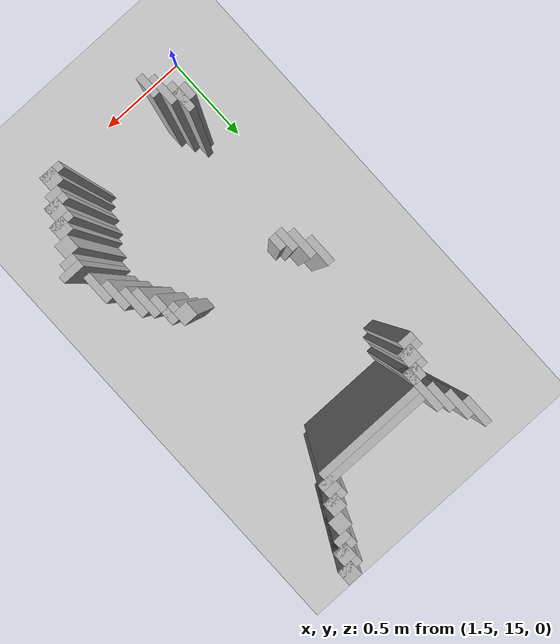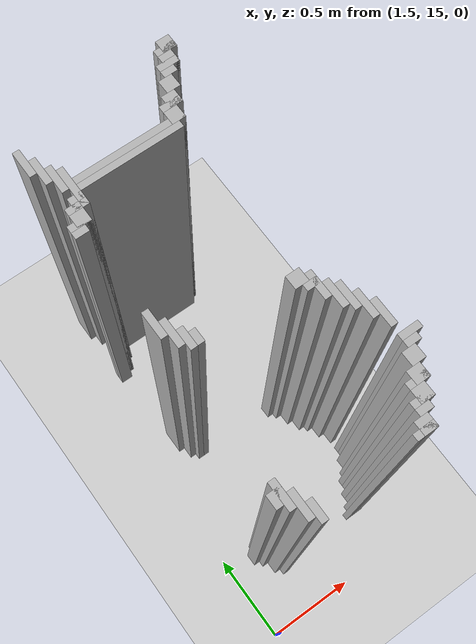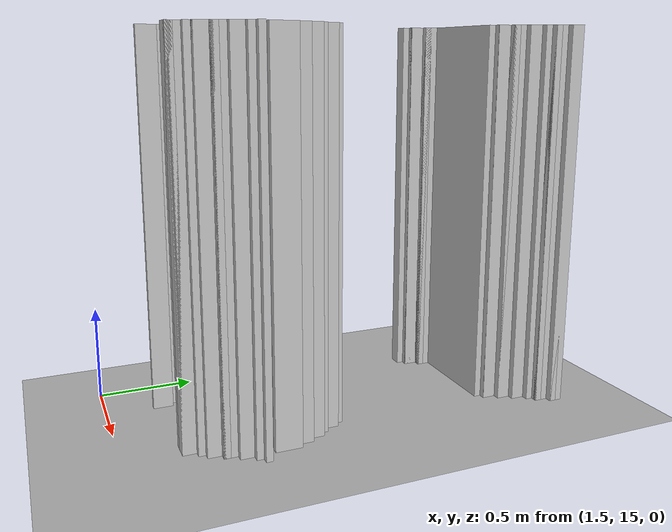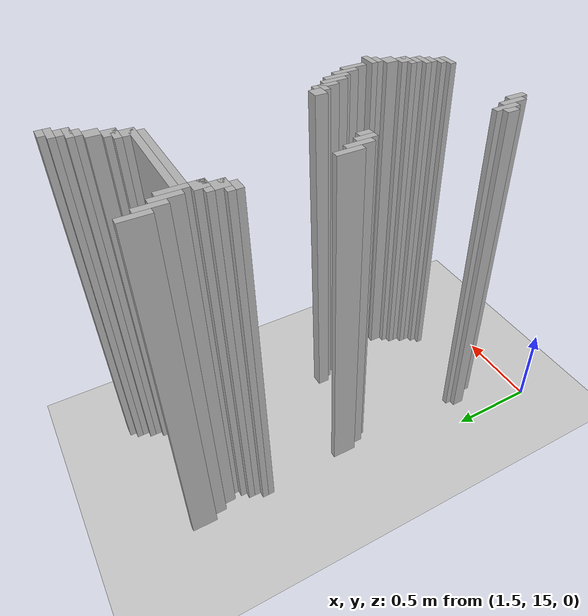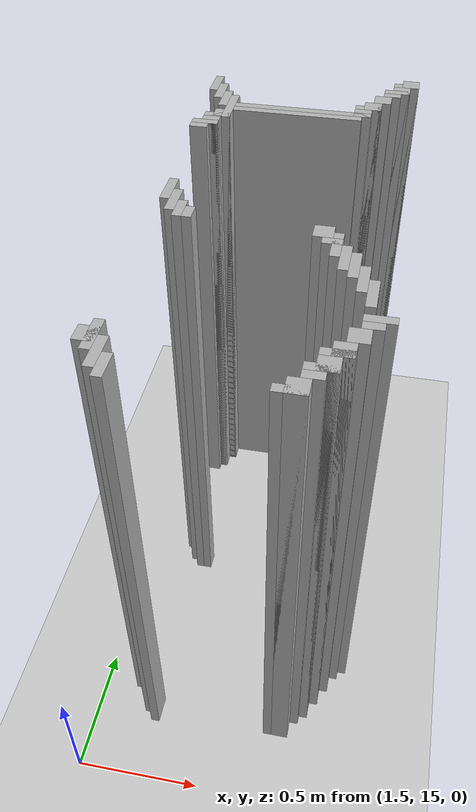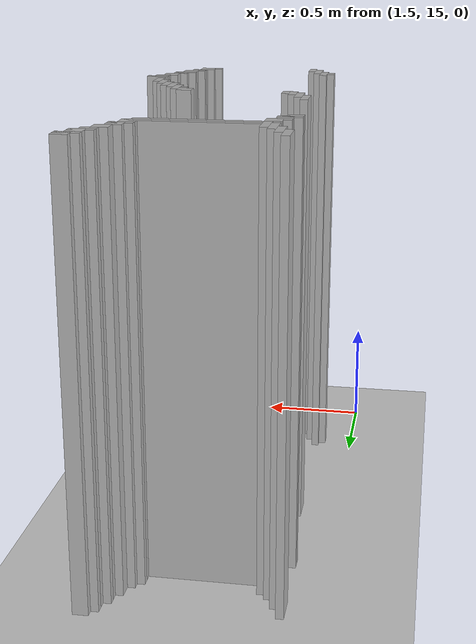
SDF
<sdf version="1.6">
 <world name="slam_world">
  <model name="ground_plane">
   <static>true</static>
   <link name="link">
    <collision name="collision">
     <geometry><plane><normal>0 0 1</normal><size>100 100</size></plane></geometry>
    </collision>
    <visual name="visual">
     <geometry><plane><normal>0 0 1</normal><size>100 100</size></plane></geometry>
     <material>
      <ambient>0.8 0.8 0.8 1</ambient>
      <diffuse>0.8 0.8 0.8 1</diffuse>
      <specular>0.8 0.8 0.8 1</specular>
     </material>
    </visual>
   </link>
  </model>
  <model name="wall_13">
   <static>true</static>
   <pose>2.470997679814385 17.296983758700694 1.0 0 0 0</pose>
   <link name="link">
    <collision name="collision">
     <geometry><box><size>0.06960556844547564 0.06960556844547564 2.0</size></box></geometry>
    </collision>
    <visual name="visual">
     <geometry><box><size>0.06960556844547564 0.06960556844547564 2.0</size></box></geometry>
     <material><ambient>0.5 0.5 0.5 1</ambient><diffuse>0.7 0.7 0.7 1</diffuse></material>
    </visual>
   </link>
  </model>
  <model name="wall_33">
   <static>true</static>
   <pose>2.453596287703016 17.279582366589327 1.0 0 0 0</pose>
   <link name="link">
    <collision name="collision">
     <geometry><box><size>0.10440835266821345 0.03480278422273782 2.0</size></box></geometry>
    </collision>
    <visual name="visual">
     <geometry><box><size>0.10440835266821345 0.03480278422273782 2.0</size></box></geometry>
     <material><ambient>0.5 0.5 0.5 1</ambient><diffuse>0.7 0.7 0.7 1</diffuse></material>
    </visual>
   </link>
  </model>
  <model name="wall_53">
   <static>true</static>
   <pose>2.436194895591647 17.22737819025522 1.0 0 0 0</pose>
   <link name="link">
    <collision name="collision">
     <geometry><box><size>0.06960556844547564 0.06960556844547564 2.0</size></box></geometry>
    </collision>
    <visual name="visual">
     <geometry><box><size>0.06960556844547564 0.06960556844547564 2.0</size></box></geometry>
     <material><ambient>0.5 0.5 0.5 1</ambient><diffuse>0.7 0.7 0.7 1</diffuse></material>
    </visual>
   </link>
  </model>
  <model name="wall_72">
   <static>true</static>
   <pose>1.6531322505800463 17.157772621809745 1.0 0 0 0</pose>
   <link name="link">
    <collision name="collision">
     <geometry><box><size>0.03480278422273782 0.13921113689095127 2.0</size></box></geometry>
    </collision>
    <visual name="visual">
     <geometry><box><size>0.03480278422273782 0.13921113689095127 2.0</size></box></geometry>
     <material><ambient>0.5 0.5 0.5 1</ambient><diffuse>0.7 0.7 0.7 1</diffuse></material>
    </visual>
   </link>
  </model>
  <model name="wall_73">
   <static>true</static>
   <pose>2.4187935034802783 17.209976798143853 1.0 0 0 0</pose>
   <link name="link">
    <collision name="collision">
     <geometry><box><size>0.10440835266821345 0.03480278422273782 2.0</size></box></geometry>
    </collision>
    <visual name="visual">
     <geometry><box><size>0.10440835266821345 0.03480278422273782 2.0</size></box></geometry>
     <material><ambient>0.5 0.5 0.5 1</ambient><diffuse>0.7 0.7 0.7 1</diffuse></material>
    </visual>
   </link>
  </model>
  <model name="wall_92">
   <static>true</static>
   <pose>2.4013921113689096 17.17517401392111 1.0 0 0 0</pose>
   <link name="link">
    <collision name="collision">
     <geometry><box><size>0.06960556844547564 0.03480278422273782 2.0</size></box></geometry>
    </collision>
    <visual name="visual">
     <geometry><box><size>0.06960556844547564 0.03480278422273782 2.0</size></box></geometry>
     <material><ambient>0.5 0.5 0.5 1</ambient><diffuse>0.7 0.7 0.7 1</diffuse></material>
    </visual>
   </link>
  </model>
  <model name="wall_102">
   <static>true</static>
   <pose>1.6879350348027842 17.08816705336427 1.0 0 0 0</pose>
   <link name="link">
    <collision name="collision">
     <geometry><box><size>0.03480278422273782 0.13921113689095127 2.0</size></box></geometry>
    </collision>
    <visual name="visual">
     <geometry><box><size>0.03480278422273782 0.13921113689095127 2.0</size></box></geometry>
     <material><ambient>0.5 0.5 0.5 1</ambient><diffuse>0.7 0.7 0.7 1</diffuse></material>
    </visual>
   </link>
  </model>
  <model name="wall_103">
   <static>true</static>
   <pose>2.3665893271461718 17.122969837587007 1.0 0 0 0</pose>
   <link name="link">
    <collision name="collision">
     <geometry><box><size>0.06960556844547564 0.06960556844547564 2.0</size></box></geometry>
    </collision>
    <visual name="visual">
     <geometry><box><size>0.06960556844547564 0.06960556844547564 2.0</size></box></geometry>
     <material><ambient>0.5 0.5 0.5 1</ambient><diffuse>0.7 0.7 0.7 1</diffuse></material>
    </visual>
   </link>
  </model>
  <model name="wall_122">
   <static>true</static>
   <pose>1.722737819025522 17.01856148491879 1.0 0 0 0</pose>
   <link name="link">
    <collision name="collision">
     <geometry><box><size>0.03480278422273782 0.13921113689095127 2.0</size></box></geometry>
    </collision>
    <visual name="visual">
     <geometry><box><size>0.03480278422273782 0.13921113689095127 2.0</size></box></geometry>
     <material><ambient>0.5 0.5 0.5 1</ambient><diffuse>0.7 0.7 0.7 1</diffuse></material>
    </visual>
   </link>
  </model>
  <model name="wall_123">
   <static>true</static>
   <pose>2.331786542923434 17.053364269141532 1.0 0 0 0</pose>
   <link name="link">
    <collision name="collision">
     <geometry><box><size>0.06960556844547564 0.06960556844547564 2.0</size></box></geometry>
    </collision>
    <visual name="visual">
     <geometry><box><size>0.06960556844547564 0.06960556844547564 2.0</size></box></geometry>
     <material><ambient>0.5 0.5 0.5 1</ambient><diffuse>0.7 0.7 0.7 1</diffuse></material>
    </visual>
   </link>
  </model>
  <model name="wall_142">
   <static>true</static>
   <pose>1.75754060324826 16.948955916473317 1.0 0 0 0</pose>
   <link name="link">
    <collision name="collision">
     <geometry><box><size>0.03480278422273782 0.2088167053364269 2.0</size></box></geometry>
    </collision>
    <visual name="visual">
     <geometry><box><size>0.03480278422273782 0.2088167053364269 2.0</size></box></geometry>
     <material><ambient>0.5 0.5 0.5 1</ambient><diffuse>0.7 0.7 0.7 1</diffuse></material>
    </visual>
   </link>
  </model>
  <model name="wall_143">
   <static>true</static>
   <pose>2.3143851508120648 17.035962877030162 1.0 0 0 0</pose>
   <link name="link">
    <collision name="collision">
     <geometry><box><size>0.10440835266821345 0.03480278422273782 2.0</size></box></geometry>
    </collision>
    <visual name="visual">
     <geometry><box><size>0.10440835266821345 0.03480278422273782 2.0</size></box></geometry>
     <material><ambient>0.5 0.5 0.5 1</ambient><diffuse>0.7 0.7 0.7 1</diffuse></material>
    </visual>
   </link>
  </model>
  <model name="wall_162">
   <static>true</static>
   <pose>2.296983758700696 16.983758700696054 1.0 0 0 0</pose>
   <link name="link">
    <collision name="collision">
     <geometry><box><size>0.06960556844547564 0.06960556844547564 2.0</size></box></geometry>
    </collision>
    <visual name="visual">
     <geometry><box><size>0.06960556844547564 0.06960556844547564 2.0</size></box></geometry>
     <material><ambient>0.5 0.5 0.5 1</ambient><diffuse>0.7 0.7 0.7 1</diffuse></material>
    </visual>
   </link>
  </model>
  <model name="wall_172">
   <static>true</static>
   <pose>2.053364269141531 16.966357308584687 1.0 0 0 0</pose>
   <link name="link">
    <collision name="collision">
     <geometry><box><size>0.5568445475638051 0.03480278422273782 2.0</size></box></geometry>
    </collision>
    <visual name="visual">
     <geometry><box><size>0.5568445475638051 0.03480278422273782 2.0</size></box></geometry>
     <material><ambient>0.5 0.5 0.5 1</ambient><diffuse>0.7 0.7 0.7 1</diffuse></material>
    </visual>
   </link>
  </model>
  <model name="wall_183">
   <static>true</static>
   <pose>2.0359628770301623 16.93155452436195 1.0 0 0 0</pose>
   <link name="link">
    <collision name="collision">
     <geometry><box><size>0.5220417633410672 0.03480278422273782 2.0</size></box></geometry>
    </collision>
    <visual name="visual">
     <geometry><box><size>0.5220417633410672 0.03480278422273782 2.0</size></box></geometry>
     <material><ambient>0.5 0.5 0.5 1</ambient><diffuse>0.7 0.7 0.7 1</diffuse></material>
    </visual>
   </link>
  </model>
  <model name="wall_193">
   <static>true</static>
   <pose>1.740139211136891 16.87935034802784 1.0 0 0 0</pose>
   <link name="link">
    <collision name="collision">
     <geometry><box><size>0.06960556844547564 0.06960556844547564 2.0</size></box></geometry>
    </collision>
    <visual name="visual">
     <geometry><box><size>0.06960556844547564 0.06960556844547564 2.0</size></box></geometry>
     <material><ambient>0.5 0.5 0.5 1</ambient><diffuse>0.7 0.7 0.7 1</diffuse></material>
    </visual>
   </link>
  </model>
  <model name="wall_203">
   <static>true</static>
   <pose>1.722737819025522 16.86194895591647 1.0 0 0 0</pose>
   <link name="link">
    <collision name="collision">
     <geometry><box><size>0.10440835266821345 0.03480278422273782 2.0</size></box></geometry>
    </collision>
    <visual name="visual">
     <geometry><box><size>0.10440835266821345 0.03480278422273782 2.0</size></box></geometry>
     <material><ambient>0.5 0.5 0.5 1</ambient><diffuse>0.7 0.7 0.7 1</diffuse></material>
    </visual>
   </link>
  </model>
  <model name="wall_213">
   <static>true</static>
   <pose>1.705336426914153 16.809744779582367 1.0 0 0 0</pose>
   <link name="link">
    <collision name="collision">
     <geometry><box><size>0.06960556844547564 0.06960556844547564 2.0</size></box></geometry>
    </collision>
    <visual name="visual">
     <geometry><box><size>0.06960556844547564 0.06960556844547564 2.0</size></box></geometry>
     <material><ambient>0.5 0.5 0.5 1</ambient><diffuse>0.7 0.7 0.7 1</diffuse></material>
    </visual>
   </link>
  </model>
  <model name="wall_223">
   <static>true</static>
   <pose>1.6879350348027842 16.792343387470996 1.0 0 0 0</pose>
   <link name="link">
    <collision name="collision">
     <geometry><box><size>0.10440835266821345 0.03480278422273782 2.0</size></box></geometry>
    </collision>
    <visual name="visual">
     <geometry><box><size>0.10440835266821345 0.03480278422273782 2.0</size></box></geometry>
     <material><ambient>0.5 0.5 0.5 1</ambient><diffuse>0.7 0.7 0.7 1</diffuse></material>
    </visual>
   </link>
  </model>
  <model name="wall_233">
   <static>true</static>
   <pose>1.6705336426914152 16.75754060324826 1.0 0 0 0</pose>
   <link name="link">
    <collision name="collision">
     <geometry><box><size>0.06960556844547564 0.03480278422273782 2.0</size></box></geometry>
    </collision>
    <visual name="visual">
     <geometry><box><size>0.06960556844547564 0.03480278422273782 2.0</size></box></geometry>
     <material><ambient>0.5 0.5 0.5 1</ambient><diffuse>0.7 0.7 0.7 1</diffuse></material>
    </visual>
   </link>
  </model>
  <model name="wall_357">
   <static>true</static>
   <pose>1.6879350348027842 16.25290023201856 1.0 0 0 0</pose>
   <link name="link">
    <collision name="collision">
     <geometry><box><size>0.03480278422273782 0.13921113689095127 2.0</size></box></geometry>
    </collision>
    <visual name="visual">
     <geometry><box><size>0.03480278422273782 0.13921113689095127 2.0</size></box></geometry>
     <material><ambient>0.5 0.5 0.5 1</ambient><diffuse>0.7 0.7 0.7 1</diffuse></material>
    </visual>
   </link>
  </model>
  <model name="wall_375">
   <static>true</static>
   <pose>1.722737819025522 16.183294663573086 1.0 0 0 0</pose>
   <link name="link">
    <collision name="collision">
     <geometry><box><size>0.03480278422273782 0.13921113689095127 2.0</size></box></geometry>
    </collision>
    <visual name="visual">
     <geometry><box><size>0.03480278422273782 0.13921113689095127 2.0</size></box></geometry>
     <material><ambient>0.5 0.5 0.5 1</ambient><diffuse>0.7 0.7 0.7 1</diffuse></material>
    </visual>
   </link>
  </model>
  <model name="wall_393">
   <static>true</static>
   <pose>1.75754060324826 16.13109048723898 1.0 0 0 0</pose>
   <link name="link">
    <collision name="collision">
     <geometry><box><size>0.03480278422273782 0.10440835266821345 2.0</size></box></geometry>
    </collision>
    <visual name="visual">
     <geometry><box><size>0.03480278422273782 0.10440835266821345 2.0</size></box></geometry>
     <material><ambient>0.5 0.5 0.5 1</ambient><diffuse>0.7 0.7 0.7 1</diffuse></material>
    </visual>
   </link>
  </model>
  <model name="wall_406">
   <static>true</static>
   <pose>1.7923433874709975 16.113689095127608 1.0 0 0 0</pose>
   <link name="link">
    <collision name="collision">
     <geometry><box><size>0.03480278422273782 0.06960556844547564 2.0</size></box></geometry>
    </collision>
    <visual name="visual">
     <geometry><box><size>0.03480278422273782 0.06960556844547564 2.0</size></box></geometry>
     <material><ambient>0.5 0.5 0.5 1</ambient><diffuse>0.7 0.7 0.7 1</diffuse></material>
    </visual>
   </link>
  </model>
  <model name="wall_417">
   <static>true</static>
   <pose>2.262180974477958 16.07888631090487 1.0 0 0 0</pose>
   <link name="link">
    <collision name="collision">
     <geometry><box><size>0.06960556844547564 0.06960556844547564 2.0</size></box></geometry>
    </collision>
    <visual name="visual">
     <geometry><box><size>0.06960556844547564 0.06960556844547564 2.0</size></box></geometry>
     <material><ambient>0.5 0.5 0.5 1</ambient><diffuse>0.7 0.7 0.7 1</diffuse></material>
    </visual>
   </link>
  </model>
  <model name="wall_430">
   <static>true</static>
   <pose>2.3143851508120648 16.009280742459396 1.0 0 0 0</pose>
   <link name="link">
    <collision name="collision">
     <geometry><box><size>0.03480278422273782 0.13921113689095127 2.0</size></box></geometry>
    </collision>
    <visual name="visual">
     <geometry><box><size>0.03480278422273782 0.13921113689095127 2.0</size></box></geometry>
     <material><ambient>0.5 0.5 0.5 1</ambient><diffuse>0.7 0.7 0.7 1</diffuse></material>
    </visual>
   </link>
  </model>
  <model name="wall_445">
   <static>true</static>
   <pose>2.296983758700696 16.026682134570766 1.0 0 0 0</pose>
   <link name="link">
    <collision name="collision">
     <geometry><box><size>0.06960556844547564 0.03480278422273782 2.0</size></box></geometry>
    </collision>
    <visual name="visual">
     <geometry><box><size>0.06960556844547564 0.03480278422273782 2.0</size></box></geometry>
     <material><ambient>0.5 0.5 0.5 1</ambient><diffuse>0.7 0.7 0.7 1</diffuse></material>
    </visual>
   </link>
  </model>
  <model name="wall_460">
   <static>true</static>
   <pose>2.3491879350348026 15.93967517401392 1.0 0 0 0</pose>
   <link name="link">
    <collision name="collision">
     <geometry><box><size>0.03480278422273782 0.13921113689095127 2.0</size></box></geometry>
    </collision>
    <visual name="visual">
     <geometry><box><size>0.03480278422273782 0.13921113689095127 2.0</size></box></geometry>
     <material><ambient>0.5 0.5 0.5 1</ambient><diffuse>0.7 0.7 0.7 1</diffuse></material>
    </visual>
   </link>
  </model>
  <model name="wall_475">
   <static>true</static>
   <pose>2.3839907192575405 15.904872389791183 1.0 0 0 0</pose>
   <link name="link">
    <collision name="collision">
     <geometry><box><size>0.03480278422273782 0.13921113689095127 2.0</size></box></geometry>
    </collision>
    <visual name="visual">
     <geometry><box><size>0.03480278422273782 0.13921113689095127 2.0</size></box></geometry>
     <material><ambient>0.5 0.5 0.5 1</ambient><diffuse>0.7 0.7 0.7 1</diffuse></material>
    </visual>
   </link>
  </model>
  <model name="wall_499">
   <static>true</static>
   <pose>2.4187935034802783 15.835266821345707 1.0 0 0 0</pose>
   <link name="link">
    <collision name="collision">
     <geometry><box><size>0.03480278422273782 0.13921113689095127 2.0</size></box></geometry>
    </collision>
    <visual name="visual">
     <geometry><box><size>0.03480278422273782 0.13921113689095127 2.0</size></box></geometry>
     <material><ambient>0.5 0.5 0.5 1</ambient><diffuse>0.7 0.7 0.7 1</diffuse></material>
    </visual>
   </link>
  </model>
  <model name="wall_522">
   <static>true</static>
   <pose>2.453596287703016 15.765661252900232 1.0 0 0 0</pose>
   <link name="link">
    <collision name="collision">
     <geometry><box><size>0.03480278422273782 0.13921113689095127 2.0</size></box></geometry>
    </collision>
    <visual name="visual">
     <geometry><box><size>0.03480278422273782 0.13921113689095127 2.0</size></box></geometry>
     <material><ambient>0.5 0.5 0.5 1</ambient><diffuse>0.7 0.7 0.7 1</diffuse></material>
    </visual>
   </link>
  </model>
  <model name="wall_578">
   <static>true</static>
   <pose>2.488399071925754 15.64385150812065 1.0 0 0 0</pose>
   <link name="link">
    <collision name="collision">
     <geometry><box><size>0.10440835266821345 0.03480278422273782 2.0</size></box></geometry>
    </collision>
    <visual name="visual">
     <geometry><box><size>0.10440835266821345 0.03480278422273782 2.0</size></box></geometry>
     <material><ambient>0.5 0.5 0.5 1</ambient><diffuse>0.7 0.7 0.7 1</diffuse></material>
    </visual>
   </link>
  </model>
  <model name="wall_597">
   <static>true</static>
   <pose>2.470997679814385 15.609048723897912 1.0 0 0 0</pose>
   <link name="link">
    <collision name="collision">
     <geometry><box><size>0.06960556844547564 0.03480278422273782 2.0</size></box></geometry>
    </collision>
    <visual name="visual">
     <geometry><box><size>0.06960556844547564 0.03480278422273782 2.0</size></box></geometry>
     <material><ambient>0.5 0.5 0.5 1</ambient><diffuse>0.7 0.7 0.7 1</diffuse></material>
    </visual>
   </link>
  </model>
  <model name="wall_613">
   <static>true</static>
   <pose>2.436194895591647 15.556844547563804 1.0 0 0 0</pose>
   <link name="link">
    <collision name="collision">
     <geometry><box><size>0.06960556844547564 0.06960556844547564 2.0</size></box></geometry>
    </collision>
    <visual name="visual">
     <geometry><box><size>0.06960556844547564 0.06960556844547564 2.0</size></box></geometry>
     <material><ambient>0.5 0.5 0.5 1</ambient><diffuse>0.7 0.7 0.7 1</diffuse></material>
    </visual>
   </link>
  </model>
  <model name="wall_629">
   <static>true</static>
   <pose>2.4013921113689096 15.48723897911833 1.0 0 0 0</pose>
   <link name="link">
    <collision name="collision">
     <geometry><box><size>0.06960556844547564 0.06960556844547564 2.0</size></box></geometry>
    </collision>
    <visual name="visual">
     <geometry><box><size>0.06960556844547564 0.06960556844547564 2.0</size></box></geometry>
     <material><ambient>0.5 0.5 0.5 1</ambient><diffuse>0.7 0.7 0.7 1</diffuse></material>
    </visual>
   </link>
  </model>
  <model name="wall_644">
   <static>true</static>
   <pose>1.6879350348027842 15.417633410672853 1.0 0 0 0</pose>
   <link name="link">
    <collision name="collision">
     <geometry><box><size>0.03480278422273782 0.13921113689095127 2.0</size></box></geometry>
    </collision>
    <visual name="visual">
     <geometry><box><size>0.03480278422273782 0.13921113689095127 2.0</size></box></geometry>
     <material><ambient>0.5 0.5 0.5 1</ambient><diffuse>0.7 0.7 0.7 1</diffuse></material>
    </visual>
   </link>
  </model>
  <model name="wall_645">
   <static>true</static>
   <pose>2.3839907192575405 15.46983758700696 1.0 0 0 0</pose>
   <link name="link">
    <collision name="collision">
     <geometry><box><size>0.10440835266821345 0.03480278422273782 2.0</size></box></geometry>
    </collision>
    <visual name="visual">
     <geometry><box><size>0.10440835266821345 0.03480278422273782 2.0</size></box></geometry>
     <material><ambient>0.5 0.5 0.5 1</ambient><diffuse>0.7 0.7 0.7 1</diffuse></material>
    </visual>
   </link>
  </model>
  <model name="wall_659">
   <static>true</static>
   <pose>1.6705336426914152 15.417633410672853 1.0 0 0 0</pose>
   <link name="link">
    <collision name="collision">
     <geometry><box><size>0.06960556844547564 0.06960556844547564 2.0</size></box></geometry>
    </collision>
    <visual name="visual">
     <geometry><box><size>0.06960556844547564 0.06960556844547564 2.0</size></box></geometry>
     <material><ambient>0.5 0.5 0.5 1</ambient><diffuse>0.7 0.7 0.7 1</diffuse></material>
    </visual>
   </link>
  </model>
  <model name="wall_660">
   <static>true</static>
   <pose>2.3665893271461718 15.417633410672853 1.0 0 0 0</pose>
   <link name="link">
    <collision name="collision">
     <geometry><box><size>0.06960556844547564 0.06960556844547564 2.0</size></box></geometry>
    </collision>
    <visual name="visual">
     <geometry><box><size>0.06960556844547564 0.06960556844547564 2.0</size></box></geometry>
     <material><ambient>0.5 0.5 0.5 1</ambient><diffuse>0.7 0.7 0.7 1</diffuse></material>
    </visual>
   </link>
  </model>
  <model name="wall_671">
   <static>true</static>
   <pose>1.722737819025522 15.348027842227378 1.0 0 0 0</pose>
   <link name="link">
    <collision name="collision">
     <geometry><box><size>0.03480278422273782 0.13921113689095127 2.0</size></box></geometry>
    </collision>
    <visual name="visual">
     <geometry><box><size>0.03480278422273782 0.13921113689095127 2.0</size></box></geometry>
     <material><ambient>0.5 0.5 0.5 1</ambient><diffuse>0.7 0.7 0.7 1</diffuse></material>
    </visual>
   </link>
  </model>
  <model name="wall_672">
   <static>true</static>
   <pose>2.3491879350348026 15.400232018561484 1.0 0 0 0</pose>
   <link name="link">
    <collision name="collision">
     <geometry><box><size>0.10440835266821345 0.03480278422273782 2.0</size></box></geometry>
    </collision>
    <visual name="visual">
     <geometry><box><size>0.10440835266821345 0.03480278422273782 2.0</size></box></geometry>
     <material><ambient>0.5 0.5 0.5 1</ambient><diffuse>0.7 0.7 0.7 1</diffuse></material>
    </visual>
   </link>
  </model>
  <model name="wall_686">
   <static>true</static>
   <pose>2.331786542923434 15.365429234338746 1.0 0 0 0</pose>
   <link name="link">
    <collision name="collision">
     <geometry><box><size>0.06960556844547564 0.03480278422273782 2.0</size></box></geometry>
    </collision>
    <visual name="visual">
     <geometry><box><size>0.06960556844547564 0.03480278422273782 2.0</size></box></geometry>
     <material><ambient>0.5 0.5 0.5 1</ambient><diffuse>0.7 0.7 0.7 1</diffuse></material>
    </visual>
   </link>
  </model>
  <model name="wall_693">
   <static>true</static>
   <pose>1.75754060324826 15.295823665893272 1.0 0 0 0</pose>
   <link name="link">
    <collision name="collision">
     <geometry><box><size>0.03480278422273782 0.10440835266821345 2.0</size></box></geometry>
    </collision>
    <visual name="visual">
     <geometry><box><size>0.03480278422273782 0.10440835266821345 2.0</size></box></geometry>
     <material><ambient>0.5 0.5 0.5 1</ambient><diffuse>0.7 0.7 0.7 1</diffuse></material>
    </visual>
   </link>
  </model>
  <model name="wall_694">
   <static>true</static>
   <pose>2.296983758700696 15.31322505800464 1.0 0 0 0</pose>
   <link name="link">
    <collision name="collision">
     <geometry><box><size>0.06960556844547564 0.06960556844547564 2.0</size></box></geometry>
    </collision>
    <visual name="visual">
     <geometry><box><size>0.06960556844547564 0.06960556844547564 2.0</size></box></geometry>
     <material><ambient>0.5 0.5 0.5 1</ambient><diffuse>0.7 0.7 0.7 1</diffuse></material>
    </visual>
   </link>
  </model>
  <model name="wall_710">
   <static>true</static>
   <pose>2.279582366589327 15.295823665893272 1.0 0 0 0</pose>
   <link name="link">
    <collision name="collision">
     <geometry><box><size>0.10440835266821345 0.03480278422273782 2.0</size></box></geometry>
    </collision>
    <visual name="visual">
     <geometry><box><size>0.10440835266821345 0.03480278422273782 2.0</size></box></geometry>
     <material><ambient>0.5 0.5 0.5 1</ambient><diffuse>0.7 0.7 0.7 1</diffuse></material>
    </visual>
   </link>
  </model>
 </world>
</sdf>
